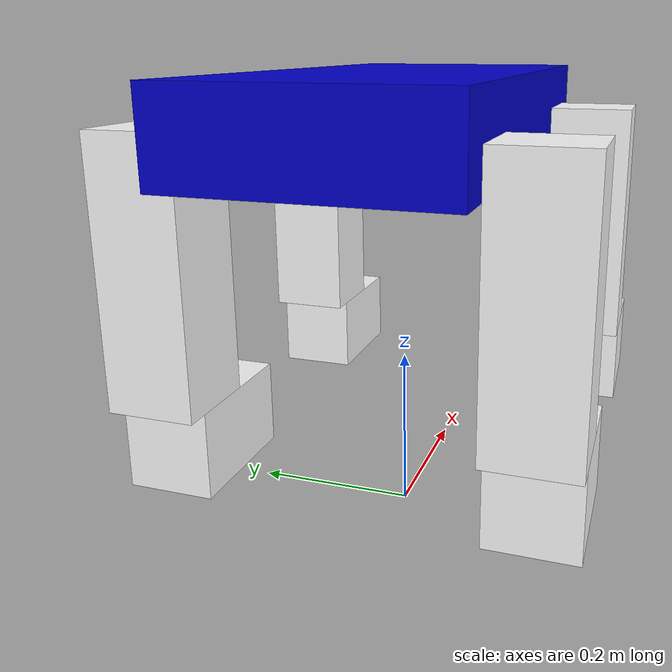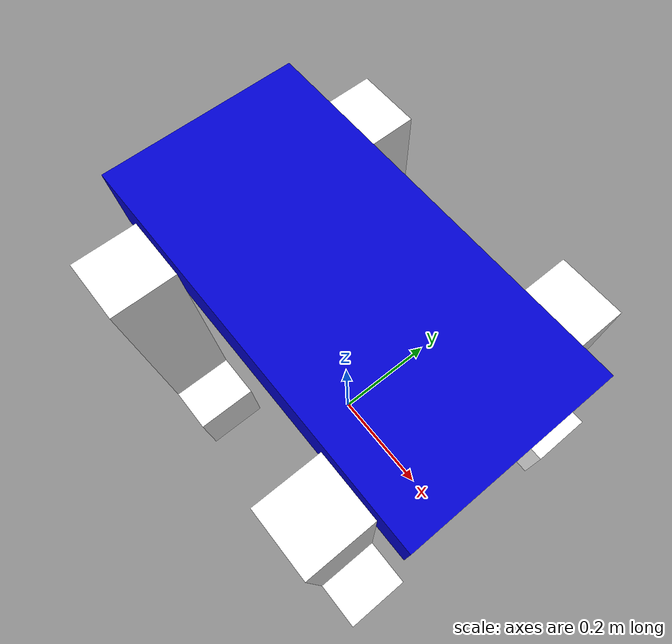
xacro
<?xml version="1.0" encoding="utf-8"?>
<robot name="toydog" xmlns:xacro="http://www.ros.org/wiki/xacro">

<material name="blue">
    <color rgba="0 0 0.8 1"/>
  </material>
  <material name="black">
    <color rgba="0 0 0 1"/>
  </material>
  <material name="white">
    <color rgba="1 1 1 1"/>
  </material>

  <link name = "base_link">
   <visual>
    <geometry>
     <box size="0.6 0.3 0.1" />
    </geometry>

     <material name = "blue"/>
     <origin rpy="0 0 0" xyz="0 0 0.5"/>
    </visual>

    <collision>
     <origin rpy="0 0 0" xyz="0 0 0.5"/>
    <geometry>
     <box size="0.6 0.3 0.1" />
    </geometry>
    </collision>

    <inertial>
     <origin rpy="0 0 0" xyz="0 0 0.5"/>
      <mass value="0.03" />
      <inertia ixx="1.0" ixy="0.0" ixz="0.0"
                         iyy="1.0" iyz="0.0"
                                   izz="1.0" />
  </inertial>
   </link>

<!--first leg-->
  <link name = "fore_leg_right">
   <visual>
     <material name = "white"/>
     <origin rpy="0 0 0" xyz="0 0 -0.15"/>
    <geometry>
     <box size="0.1 0.1 0.3" />
    </geometry>
    </visual>

    <collision>
     <origin rpy="0 0 0" xyz="0 0 -0.15"/>
    <geometry>
     <box size="0.1 0.1 0.3" />
    </geometry>
    </collision>

    <inertial>
     <origin rpy="0 0 0" xyz="0 0 -0.15"/>
      <mass value="0.03" />
      <inertia ixx="1.0" ixy="0.0" ixz="0.0"
                         iyy="1.0" iyz="0.0"
                                   izz="1.0" />
  </inertial>
   </link>

  <joint name="joint1" type="revolute">
    <parent link="base_link"/>
    <child link="fore_leg_right"/>
    <origin xyz="0.2 0.2 0.5"/>
    <axis xyz="0 1 0"/>
    <limit lower="-1.57" upper="1.57" effort="0.5293" velocity="6.159937255" />
  </joint>
 <transmission name="trans1">
    <type>transmission_interface/SimpleTransmission</type>
    <joint name="joint1">
      <hardwareInterface>hardware_interface/EffortJointInterface</hardwareInterface>
    </joint>
    <actuator name="motor1">
       <hardwareInterface>hardware_interface/EffortJointInterface</hardwareInterface>
       <mechanismReduction>1</mechanismReduction>
    </actuator>
 </transmission>

  <link name = "fore_leg_right2">
   <visual>
    <geometry>
     <box size="0.15 0.1 0.1" />
    </geometry>
     <material name = "white"/>
     <origin rpy="0 0 0" xyz="0.05 0 -0.05"/>
    </visual>

    <collision>
     <origin rpy="0 0 0" xyz="0.05 0 -0.05"/>
    <geometry>
     <box size="0.15 0.1 0.1" />
    </geometry>
    </collision>

    <inertial>
     <origin rpy="0 0 0" xyz="0.05 0 -0.05"/>
      <mass value="0.03" />
      <inertia ixx="1.0" ixy="0.0" ixz="0.0"
                         iyy="1.0" iyz="0.0"
                                   izz="1.0" />
  </inertial>
   </link>

  <joint name="joint2" type="revolute">
    <parent link="fore_leg_right"/>
    <child link="fore_leg_right2"/>
    <origin xyz="0 0 -0.3"/>
    <axis xyz="0 1 0"/>
    <limit lower="-0.3" upper="1.57" effort="0.5293" velocity="6.159937255" />
  </joint>
 <transmission name="trans2">
    <type>transmission_interface/SimpleTransmission</type>
    <joint name="joint2">
      <hardwareInterface>hardware_interface/EffortJointInterface</hardwareInterface>
    </joint>
    <actuator name="motor2">
       <hardwareInterface>hardware_interface/EffortJointInterface</hardwareInterface>
       <mechanismReduction>1</mechanismReduction>
    </actuator>
 </transmission>

<!--second leg-->
  <link name = "fore_leg_left">
   <visual>
    <geometry>
     <box size="0.1 0.1 0.3" />
    </geometry>
     <material name = "white"/>
     <origin rpy="0 0 0" xyz="0 0 -0.15"/>
    </visual>

    <collision>
     <origin rpy="0 0 0" xyz="0 0 -0.15"/>
     <geometry>
     <box size="0.1 0.1 0.3" />
     </geometry>
    </collision>

    <inertial>
     <origin rpy="0 0 0" xyz="0 0 -0.15"/>
      <mass value="0.03" />
      <inertia ixx="1.0" ixy="0.0" ixz="0.0"
                         iyy="1.0" iyz="0.0"
                                   izz="1.0" />
  </inertial>
   </link>

  <joint name="joint3" type="revolute">
    <parent link="base_link"/>
    <child link="fore_leg_left"/>
    <origin rpy="0 0 0 " xyz="0.2 -0.2 0.5"/>
    <axis xyz="0 1 0"/>
    <limit lower="-1.57" upper="1.57" effort="0.5293" velocity="6.159937255" />
  </joint>
 <transmission name="trans3">
    <type>transmission_interface/SimpleTransmission</type>
    <joint name="joint3">
      <hardwareInterface>hardware_interface/EffortJointInterface</hardwareInterface>
    </joint>
    <actuator name="motor3">
       <hardwareInterface>hardware_interface/EffortJointInterface</hardwareInterface>
       <mechanismReduction>1</mechanismReduction>
    </actuator>
 </transmission>

  <link name = "fore_leg_left2">
   <visual>
    <geometry>
     <box size="0.15 0.1 0.1" />
    </geometry>
     <material name = "white"/>
     <origin rpy="0 0 0" xyz="0.05 0 -0.05"/>
    </visual>

    <collision>
     <origin rpy="0 0 0" xyz="0.05 0 -0.05"/>
     <geometry>
     <box size="0.15 0.1 0.1" />
     </geometry>
    </collision>

    <inertial>
     <origin rpy="0 0 0" xyz="0.05 0 -0.05"/>
      <mass value="0.03" />
      <inertia ixx="1.0" ixy="0.0" ixz="0.0"
                         iyy="1.0" iyz="0.0"
                                   izz="1.0" />
  </inertial>
   </link>

  <joint name="joint4" type="revolute">
    <parent link="fore_leg_left"/>
    <child link="fore_leg_left2"/>
    <origin xyz="0 0 -0.3"/>
    <axis xyz="0 1 0"/>
    <limit lower="-0.3" upper="1.57" effort="0.5293" velocity="6.159937255" />
  </joint>
 <transmission name="trans4">
    <type>transmission_interface/SimpleTransmission</type>
    <joint name="joint4">
      <hardwareInterface>hardware_interface/EffortJointInterface</hardwareInterface>
    </joint>
    <actuator name="motor4">
       <hardwareInterface>hardware_interface/EffortJointInterface</hardwareInterface>
       <mechanismReduction>1</mechanismReduction>
    </actuator>
 </transmission>

<!--third leg-->
  <link name = "hind_leg_right">
   <visual>
    <geometry>
     <box size="0.1 0.1 0.3" />
    </geometry>
     <material name = "white"/>
     <origin rpy="0 0 0" xyz="0 0 -0.15"/>
    </visual>

    <collision>
     <origin rpy="0 0 0" xyz="0 0 -0.15"/>
     <geometry>
     <box size="0.1 0.1 0.3" />
     </geometry>
    </collision>

    <inertial>
     <origin rpy="0 0 0" xyz="0 0 -0.15"/>
      <mass value="0.03" />
      <inertia ixx="1.0" ixy="0.0" ixz="0.0"
                         iyy="1.0" iyz="0.0"
                                   izz="1.0" />
  </inertial>
   </link>

  <joint name="joint5" type="revolute">
    <parent link="base_link"/>
    <child link="hind_leg_right"/>
    <origin xyz="-0.2 0.2 0.5"/>
    <axis xyz="0 1 0"/>
    <limit lower="-1.57" upper="1.57" effort="0.5293" velocity="6.159937255" />
  </joint>
 <transmission name="trans5">
    <type>transmission_interface/SimpleTransmission</type>
    <joint name="joint5">
      <hardwareInterface>hardware_interface/EffortJointInterface</hardwareInterface>
    </joint>
    <actuator name="motor5">
       <hardwareInterface>hardware_interface/EffortJointInterface</hardwareInterface>
       <mechanismReduction>1</mechanismReduction>
    </actuator>
 </transmission>

  <link name = "hind_leg_right2">
   <visual>
    <geometry>
     <box size="0.15 0.1 0.1" />
    </geometry>
     <material name = "white"/>
     <origin rpy="0 0 0" xyz="0.05 0 -0.05"/>
    </visual>

    <collision>
     <origin rpy="0 0 0" xyz="0.05 0 -0.05"/>
     <geometry>
     <box size="0.15 0.1 0.1" />
     </geometry>
    </collision>

    <inertial>
     <origin rpy="0 0 0" xyz="0.05 0 -0.05"/>
      <mass value="0.03" />
      <inertia ixx="1.0" ixy="0.0" ixz="0.0"
                         iyy="1.0" iyz="0.0"
                                   izz="1.0" />
  </inertial>
   </link>

  <joint name="joint6" type="revolute">
    <parent link="hind_leg_right"/>
    <child link="hind_leg_right2"/>
    <origin xyz="0 0 -0.3"/>
    <axis xyz="0 1 0"/>
    <limit lower="-0.3" upper="1.57" effort="0.5293" velocity="6.159937255" />
  </joint>
 <transmission name="trans6">
    <type>transmission_interface/SimpleTransmission</type>
    <joint name="joint6">
      <hardwareInterface>hardware_interface/EffortJointInterface</hardwareInterface>
    </joint>
    <actuator name="motor6">
       <hardwareInterface>hardware_interface/EffortJointInterface</hardwareInterface>
       <mechanismReduction>1</mechanismReduction>
    </actuator>
 </transmission>

<!--forth leg-->
  <link name = "hind_leg_left">
   <visual>
    <geometry>
     <box size="0.1 0.1 0.3" />
    </geometry>
     <material name = "white"/>
     <origin rpy="0 0 0" xyz="0 0 -0.15"/>
    </visual>

    <collision>
     <origin rpy="0 0 0" xyz="0 0 -0.15"/>
     <geometry>
     <box size="0.1 0.1 0.3" />
     </geometry>
    </collision>

    <inertial>
     <origin rpy="0 0 0" xyz="0 0 -0.15"/>
      <mass value="0.03" />
      <inertia ixx="1.0" ixy="0.0" ixz="0.0"
                         iyy="1.0" iyz="0.0"
                                   izz="1.0" />
  </inertial>
   </link>

  <joint name="joint7" type="revolute">
    <parent link="base_link"/>
    <child link="hind_leg_left"/>
    <origin xyz="-0.2 -0.2 0.5"/>
    <axis xyz="0 1 0"/>
    <limit lower="-1.57" upper="1.57" effort="0.5293" velocity="6.159937255" />
  </joint>
 <transmission name="trans7">
    <type>transmission_interface/SimpleTransmission</type>
    <joint name="joint7">
      <hardwareInterface>hardware_interface/EffortJointInterface</hardwareInterface>
    </joint>
    <actuator name="motor7">
       <hardwareInterface>hardware_interface/EffortJointInterface</hardwareInterface>
       <mechanismReduction>1</mechanismReduction>
    </actuator>
 </transmission>

  <link name = "hind_leg_left2">
   <visual>
    <geometry>
     <box size="0.15 0.1 0.1" />
    </geometry>
     <material name = "white"/>
     <origin rpy="0 0 0" xyz="0.05 0 -0.05"/>
    </visual>

    <collision>
     <origin rpy="0 0 0" xyz="0.05 0 -0.05"/>
     <geometry>
     <box size="0.15 0.1 0.1" />
     </geometry>
    </collision>

    <inertial>
     <origin rpy="0 0 0" xyz="0.05 0 -0.05"/>
      <mass value="0.03" />
      <inertia ixx="1.0" ixy="0.0" ixz="0.0"
                         iyy="1.0" iyz="0.0"
                                   izz="1.0" />
  </inertial>
   </link>

  <joint name="joint8" type="revolute">
    <parent link="hind_leg_left"/>
    <child link="hind_leg_left2"/>
    <origin xyz="0 0 -0.3"/>
    <axis xyz="0 1 0"/>
    <limit lower="-0.3" upper="1.57" effort="0.5293" velocity="6.159937255" />
  </joint>
 <transmission name="trans8">
    <type>transmission_interface/SimpleTransmission</type>
    <joint name="joint8">
      <hardwareInterface>hardware_interface/EffortJointInterface</hardwareInterface>
    </joint>
    <actuator name="motor8">
       <hardwareInterface>hardware_interface/EffortJointInterface</hardwareInterface>
       <mechanismReduction>1</mechanismReduction>
    </actuator>
 </transmission>

<gazebo>
    <plugin name="gazebo_ros_control" filename="libgazebo_ros_control.so">
      <robotNamespace>/toydog</robotNamespace>
    </plugin>
</gazebo>

</robot>
